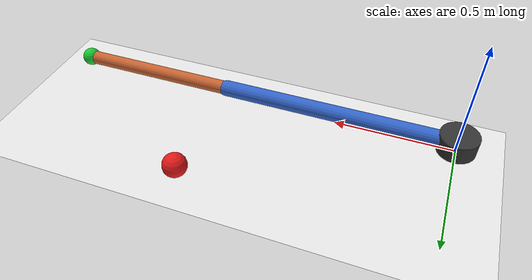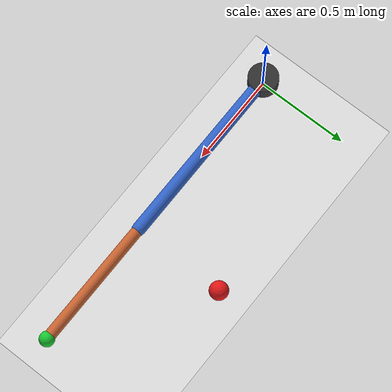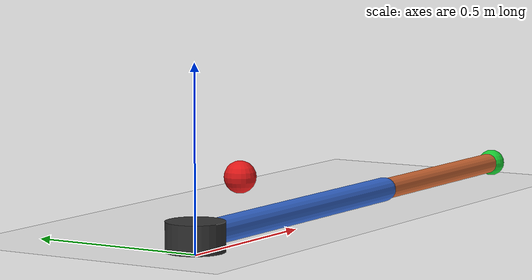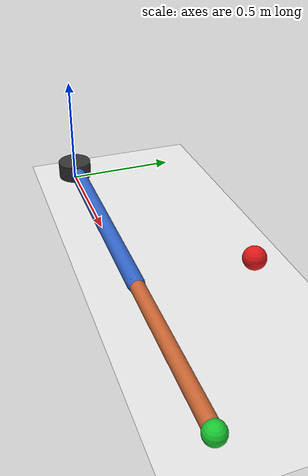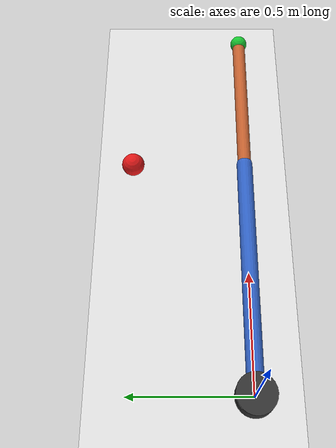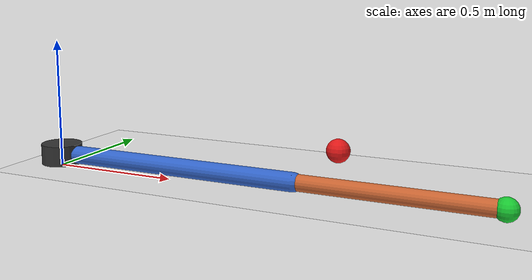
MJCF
<mujoco model="planar_2link_arm">
  <!--
    Placeholder MuJoCo model for a planar 2-link arm.
    This XML is intended as a clear starting point for later simulation work.
    Full controller validation will be done in Stage 04.
  -->
  <compiler angle="radian" coordinate="local"/>
  <option timestep="0.002" gravity="0 0 -9.81"/>

  <default>
    <joint type="hinge" axis="0 0 1" damping="0.1"/>
    <geom type="capsule" size="0.035" rgba="0.2 0.4 0.8 1"/>
  </default>

  <worldbody>
    <geom name="floor" type="plane" size="3 3 0.05" rgba="0.9 0.9 0.9 1"/>
    <body name="base" pos="0 0 0.05">
      <geom name="base_geom" type="cylinder" size="0.08 0.04" rgba="0.2 0.2 0.2 1"/>
      <body name="link1" pos="0 0 0">
        <joint name="shoulder" type="hinge" axis="0 0 1" range="-3.14159 3.14159"/>
        <geom name="link1_geom" fromto="0 0 0 1.0 0 0" size="0.035"/>
        <body name="link2" pos="1.0 0 0">
          <joint name="elbow" type="hinge" axis="0 0 1" range="-3.14159 3.14159"/>
          <geom name="link2_geom" fromto="0 0 0 0.7 0 0" size="0.03" rgba="0.8 0.4 0.2 1"/>
          <site name="end_effector" pos="0.7 0 0" size="0.04" rgba="0.1 0.8 0.2 1"/>
        </body>
      </body>
    </body>
    <site name="target" pos="1.0 0.5 0.05" size="0.05" rgba="0.9 0.1 0.1 1"/>
  </worldbody>

  <actuator>
    <motor name="shoulder_motor" joint="shoulder" gear="1"/>
    <motor name="elbow_motor" joint="elbow" gear="1"/>
  </actuator>
</mujoco>
